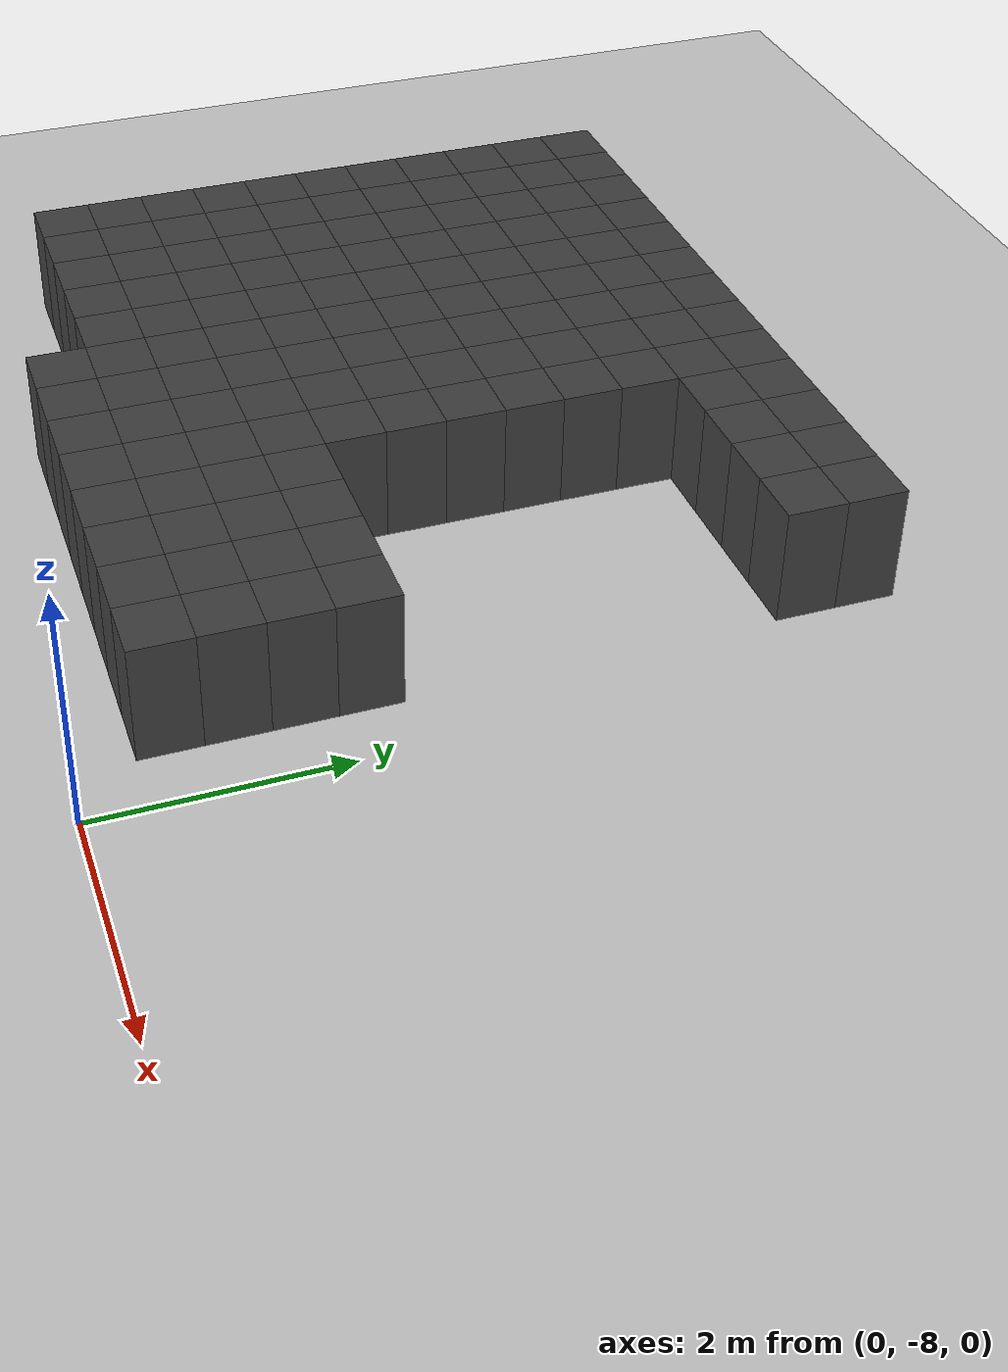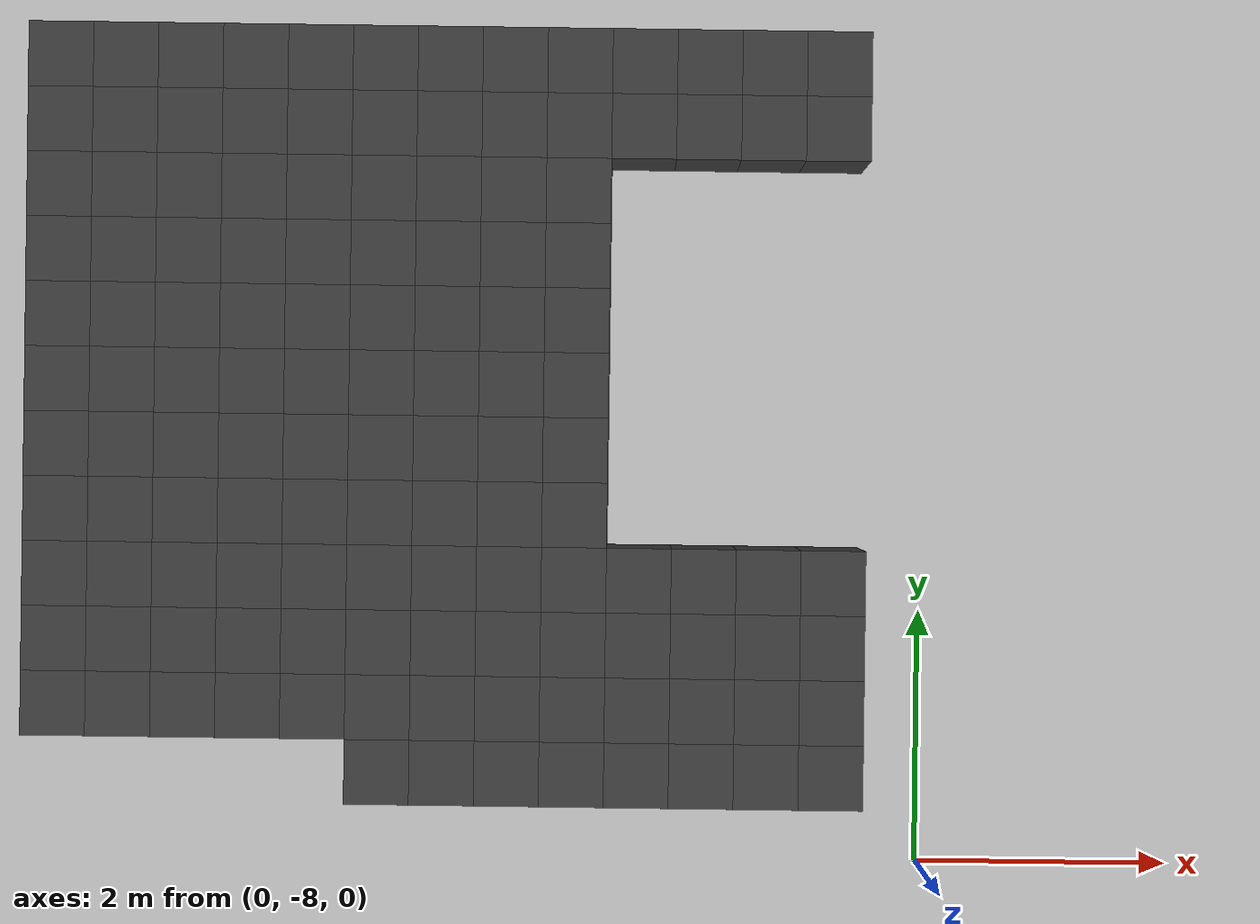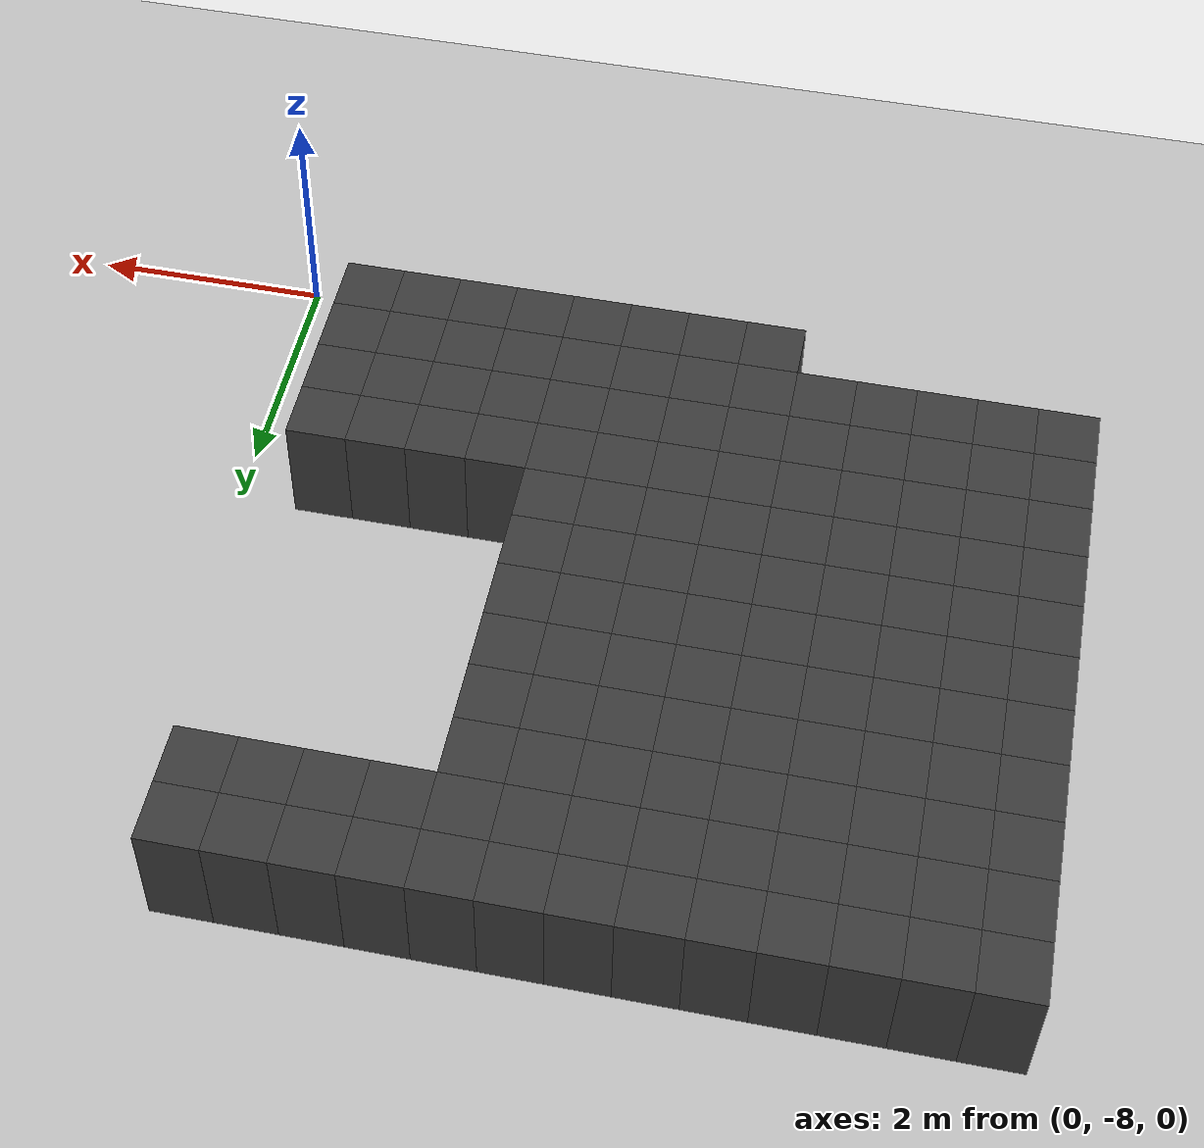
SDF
<sdf version="1.7">
 <world name="map_11672">
  <model name="ground_plane">
   <static>true</static>
   <link name="link">
    <collision name="collision">
     <geometry><plane><normal>0 0 1</normal><size>200 200</size></plane></geometry>
    </collision>
    <visual name="visual">
     <geometry><plane><normal>0 0 1</normal><size>200 200</size></plane></geometry>
     <material><ambient>0.8 0.8 0.8 1</ambient><diffuse>0.8 0.8 0.8 1</diffuse></material>
    </visual>
   </link>
  </model>
  <model name="maze_environment">
   <static>true</static>
   <link name="wall_1158">
    <pose>-6.750 -1.750 0.500 0 0 0</pose>
    <collision name="col"><geometry><box><size>0.5 0.5 1.0</size></box></geometry></collision>
    <visual name="vis">
     <geometry><box><size>0.5 0.5 1.0</size></box></geometry>
     <material><ambient>0.15 0.15 0.15 1</ambient><diffuse>0.25 0.25 0.25 1</diffuse></material>
    </visual>
   </link>
   <link name="wall_1159">
    <pose>-6.250 -1.750 0.500 0 0 0</pose>
    <collision name="col"><geometry><box><size>0.5 0.5 1.0</size></box></geometry></collision>
    <visual name="vis">
     <geometry><box><size>0.5 0.5 1.0</size></box></geometry>
     <material><ambient>0.15 0.15 0.15 1</ambient><diffuse>0.25 0.25 0.25 1</diffuse></material>
    </visual>
   </link>
   <link name="wall_1160">
    <pose>-5.750 -1.750 0.500 0 0 0</pose>
    <collision name="col"><geometry><box><size>0.5 0.5 1.0</size></box></geometry></collision>
    <visual name="vis">
     <geometry><box><size>0.5 0.5 1.0</size></box></geometry>
     <material><ambient>0.15 0.15 0.15 1</ambient><diffuse>0.25 0.25 0.25 1</diffuse></material>
    </visual>
   </link>
   <link name="wall_1161">
    <pose>-5.250 -1.750 0.500 0 0 0</pose>
    <collision name="col"><geometry><box><size>0.5 0.5 1.0</size></box></geometry></collision>
    <visual name="vis">
     <geometry><box><size>0.5 0.5 1.0</size></box></geometry>
     <material><ambient>0.15 0.15 0.15 1</ambient><diffuse>0.25 0.25 0.25 1</diffuse></material>
    </visual>
   </link>
   <link name="wall_1162">
    <pose>-4.750 -1.750 0.500 0 0 0</pose>
    <collision name="col"><geometry><box><size>0.5 0.5 1.0</size></box></geometry></collision>
    <visual name="vis">
     <geometry><box><size>0.5 0.5 1.0</size></box></geometry>
     <material><ambient>0.15 0.15 0.15 1</ambient><diffuse>0.25 0.25 0.25 1</diffuse></material>
    </visual>
   </link>
   <link name="wall_1163">
    <pose>-4.250 -1.750 0.500 0 0 0</pose>
    <collision name="col"><geometry><box><size>0.5 0.5 1.0</size></box></geometry></collision>
    <visual name="vis">
     <geometry><box><size>0.5 0.5 1.0</size></box></geometry>
     <material><ambient>0.15 0.15 0.15 1</ambient><diffuse>0.25 0.25 0.25 1</diffuse></material>
    </visual>
   </link>
   <link name="wall_1164">
    <pose>-3.750 -1.750 0.500 0 0 0</pose>
    <collision name="col"><geometry><box><size>0.5 0.5 1.0</size></box></geometry></collision>
    <visual name="vis">
     <geometry><box><size>0.5 0.5 1.0</size></box></geometry>
     <material><ambient>0.15 0.15 0.15 1</ambient><diffuse>0.25 0.25 0.25 1</diffuse></material>
    </visual>
   </link>
   <link name="wall_1165">
    <pose>-3.250 -1.750 0.500 0 0 0</pose>
    <collision name="col"><geometry><box><size>0.5 0.5 1.0</size></box></geometry></collision>
    <visual name="vis">
     <geometry><box><size>0.5 0.5 1.0</size></box></geometry>
     <material><ambient>0.15 0.15 0.15 1</ambient><diffuse>0.25 0.25 0.25 1</diffuse></material>
    </visual>
   </link>
   <link name="wall_1166">
    <pose>-2.750 -1.750 0.500 0 0 0</pose>
    <collision name="col"><geometry><box><size>0.5 0.5 1.0</size></box></geometry></collision>
    <visual name="vis">
     <geometry><box><size>0.5 0.5 1.0</size></box></geometry>
     <material><ambient>0.15 0.15 0.15 1</ambient><diffuse>0.25 0.25 0.25 1</diffuse></material>
    </visual>
   </link>
   <link name="wall_1167">
    <pose>-2.250 -1.750 0.500 0 0 0</pose>
    <collision name="col"><geometry><box><size>0.5 0.5 1.0</size></box></geometry></collision>
    <visual name="vis">
     <geometry><box><size>0.5 0.5 1.0</size></box></geometry>
     <material><ambient>0.15 0.15 0.15 1</ambient><diffuse>0.25 0.25 0.25 1</diffuse></material>
    </visual>
   </link>
   <link name="wall_1168">
    <pose>-1.750 -1.750 0.500 0 0 0</pose>
    <collision name="col"><geometry><box><size>0.5 0.5 1.0</size></box></geometry></collision>
    <visual name="vis">
     <geometry><box><size>0.5 0.5 1.0</size></box></geometry>
     <material><ambient>0.15 0.15 0.15 1</ambient><diffuse>0.25 0.25 0.25 1</diffuse></material>
    </visual>
   </link>
   <link name="wall_1169">
    <pose>-1.250 -1.750 0.500 0 0 0</pose>
    <collision name="col"><geometry><box><size>0.5 0.5 1.0</size></box></geometry></collision>
    <visual name="vis">
     <geometry><box><size>0.5 0.5 1.0</size></box></geometry>
     <material><ambient>0.15 0.15 0.15 1</ambient><diffuse>0.25 0.25 0.25 1</diffuse></material>
    </visual>
   </link>
   <link name="wall_1170">
    <pose>-0.750 -1.750 0.500 0 0 0</pose>
    <collision name="col"><geometry><box><size>0.5 0.5 1.0</size></box></geometry></collision>
    <visual name="vis">
     <geometry><box><size>0.5 0.5 1.0</size></box></geometry>
     <material><ambient>0.15 0.15 0.15 1</ambient><diffuse>0.25 0.25 0.25 1</diffuse></material>
    </visual>
   </link>
   <link name="wall_1206">
    <pose>-6.750 -2.250 0.500 0 0 0</pose>
    <collision name="col"><geometry><box><size>0.5 0.5 1.0</size></box></geometry></collision>
    <visual name="vis">
     <geometry><box><size>0.5 0.5 1.0</size></box></geometry>
     <material><ambient>0.15 0.15 0.15 1</ambient><diffuse>0.25 0.25 0.25 1</diffuse></material>
    </visual>
   </link>
   <link name="wall_1207">
    <pose>-6.250 -2.250 0.500 0 0 0</pose>
    <collision name="col"><geometry><box><size>0.5 0.5 1.0</size></box></geometry></collision>
    <visual name="vis">
     <geometry><box><size>0.5 0.5 1.0</size></box></geometry>
     <material><ambient>0.15 0.15 0.15 1</ambient><diffuse>0.25 0.25 0.25 1</diffuse></material>
    </visual>
   </link>
   <link name="wall_1208">
    <pose>-5.750 -2.250 0.500 0 0 0</pose>
    <collision name="col"><geometry><box><size>0.5 0.5 1.0</size></box></geometry></collision>
    <visual name="vis">
     <geometry><box><size>0.5 0.5 1.0</size></box></geometry>
     <material><ambient>0.15 0.15 0.15 1</ambient><diffuse>0.25 0.25 0.25 1</diffuse></material>
    </visual>
   </link>
   <link name="wall_1209">
    <pose>-5.250 -2.250 0.500 0 0 0</pose>
    <collision name="col"><geometry><box><size>0.5 0.5 1.0</size></box></geometry></collision>
    <visual name="vis">
     <geometry><box><size>0.5 0.5 1.0</size></box></geometry>
     <material><ambient>0.15 0.15 0.15 1</ambient><diffuse>0.25 0.25 0.25 1</diffuse></material>
    </visual>
   </link>
   <link name="wall_1210">
    <pose>-4.750 -2.250 0.500 0 0 0</pose>
    <collision name="col"><geometry><box><size>0.5 0.5 1.0</size></box></geometry></collision>
    <visual name="vis">
     <geometry><box><size>0.5 0.5 1.0</size></box></geometry>
     <material><ambient>0.15 0.15 0.15 1</ambient><diffuse>0.25 0.25 0.25 1</diffuse></material>
    </visual>
   </link>
   <link name="wall_1211">
    <pose>-4.250 -2.250 0.500 0 0 0</pose>
    <collision name="col"><geometry><box><size>0.5 0.5 1.0</size></box></geometry></collision>
    <visual name="vis">
     <geometry><box><size>0.5 0.5 1.0</size></box></geometry>
     <material><ambient>0.15 0.15 0.15 1</ambient><diffuse>0.25 0.25 0.25 1</diffuse></material>
    </visual>
   </link>
   <link name="wall_1212">
    <pose>-3.750 -2.250 0.500 0 0 0</pose>
    <collision name="col"><geometry><box><size>0.5 0.5 1.0</size></box></geometry></collision>
    <visual name="vis">
     <geometry><box><size>0.5 0.5 1.0</size></box></geometry>
     <material><ambient>0.15 0.15 0.15 1</ambient><diffuse>0.25 0.25 0.25 1</diffuse></material>
    </visual>
   </link>
   <link name="wall_1213">
    <pose>-3.250 -2.250 0.500 0 0 0</pose>
    <collision name="col"><geometry><box><size>0.5 0.5 1.0</size></box></geometry></collision>
    <visual name="vis">
     <geometry><box><size>0.5 0.5 1.0</size></box></geometry>
     <material><ambient>0.15 0.15 0.15 1</ambient><diffuse>0.25 0.25 0.25 1</diffuse></material>
    </visual>
   </link>
   <link name="wall_1214">
    <pose>-2.750 -2.250 0.500 0 0 0</pose>
    <collision name="col"><geometry><box><size>0.5 0.5 1.0</size></box></geometry></collision>
    <visual name="vis">
     <geometry><box><size>0.5 0.5 1.0</size></box></geometry>
     <material><ambient>0.15 0.15 0.15 1</ambient><diffuse>0.25 0.25 0.25 1</diffuse></material>
    </visual>
   </link>
   <link name="wall_1215">
    <pose>-2.250 -2.250 0.500 0 0 0</pose>
    <collision name="col"><geometry><box><size>0.5 0.5 1.0</size></box></geometry></collision>
    <visual name="vis">
     <geometry><box><size>0.5 0.5 1.0</size></box></geometry>
     <material><ambient>0.15 0.15 0.15 1</ambient><diffuse>0.25 0.25 0.25 1</diffuse></material>
    </visual>
   </link>
   <link name="wall_1216">
    <pose>-1.750 -2.250 0.500 0 0 0</pose>
    <collision name="col"><geometry><box><size>0.5 0.5 1.0</size></box></geometry></collision>
    <visual name="vis">
     <geometry><box><size>0.5 0.5 1.0</size></box></geometry>
     <material><ambient>0.15 0.15 0.15 1</ambient><diffuse>0.25 0.25 0.25 1</diffuse></material>
    </visual>
   </link>
   <link name="wall_1217">
    <pose>-1.250 -2.250 0.500 0 0 0</pose>
    <collision name="col"><geometry><box><size>0.5 0.5 1.0</size></box></geometry></collision>
    <visual name="vis">
     <geometry><box><size>0.5 0.5 1.0</size></box></geometry>
     <material><ambient>0.15 0.15 0.15 1</ambient><diffuse>0.25 0.25 0.25 1</diffuse></material>
    </visual>
   </link>
   <link name="wall_1218">
    <pose>-0.750 -2.250 0.500 0 0 0</pose>
    <collision name="col"><geometry><box><size>0.5 0.5 1.0</size></box></geometry></collision>
    <visual name="vis">
     <geometry><box><size>0.5 0.5 1.0</size></box></geometry>
     <material><ambient>0.15 0.15 0.15 1</ambient><diffuse>0.25 0.25 0.25 1</diffuse></material>
    </visual>
   </link>
   <link name="wall_1251">
    <pose>-6.750 -2.750 0.500 0 0 0</pose>
    <collision name="col"><geometry><box><size>0.5 0.5 1.0</size></box></geometry></collision>
    <visual name="vis">
     <geometry><box><size>0.5 0.5 1.0</size></box></geometry>
     <material><ambient>0.15 0.15 0.15 1</ambient><diffuse>0.25 0.25 0.25 1</diffuse></material>
    </visual>
   </link>
   <link name="wall_1252">
    <pose>-6.250 -2.750 0.500 0 0 0</pose>
    <collision name="col"><geometry><box><size>0.5 0.5 1.0</size></box></geometry></collision>
    <visual name="vis">
     <geometry><box><size>0.5 0.5 1.0</size></box></geometry>
     <material><ambient>0.15 0.15 0.15 1</ambient><diffuse>0.25 0.25 0.25 1</diffuse></material>
    </visual>
   </link>
   <link name="wall_1253">
    <pose>-5.750 -2.750 0.500 0 0 0</pose>
    <collision name="col"><geometry><box><size>0.5 0.5 1.0</size></box></geometry></collision>
    <visual name="vis">
     <geometry><box><size>0.5 0.5 1.0</size></box></geometry>
     <material><ambient>0.15 0.15 0.15 1</ambient><diffuse>0.25 0.25 0.25 1</diffuse></material>
    </visual>
   </link>
   <link name="wall_1254">
    <pose>-5.250 -2.750 0.500 0 0 0</pose>
    <collision name="col"><geometry><box><size>0.5 0.5 1.0</size></box></geometry></collision>
    <visual name="vis">
     <geometry><box><size>0.5 0.5 1.0</size></box></geometry>
     <material><ambient>0.15 0.15 0.15 1</ambient><diffuse>0.25 0.25 0.25 1</diffuse></material>
    </visual>
   </link>
   <link name="wall_1255">
    <pose>-4.750 -2.750 0.500 0 0 0</pose>
    <collision name="col"><geometry><box><size>0.5 0.5 1.0</size></box></geometry></collision>
    <visual name="vis">
     <geometry><box><size>0.5 0.5 1.0</size></box></geometry>
     <material><ambient>0.15 0.15 0.15 1</ambient><diffuse>0.25 0.25 0.25 1</diffuse></material>
    </visual>
   </link>
   <link name="wall_1256">
    <pose>-4.250 -2.750 0.500 0 0 0</pose>
    <collision name="col"><geometry><box><size>0.5 0.5 1.0</size></box></geometry></collision>
    <visual name="vis">
     <geometry><box><size>0.5 0.5 1.0</size></box></geometry>
     <material><ambient>0.15 0.15 0.15 1</ambient><diffuse>0.25 0.25 0.25 1</diffuse></material>
    </visual>
   </link>
   <link name="wall_1257">
    <pose>-3.750 -2.750 0.500 0 0 0</pose>
    <collision name="col"><geometry><box><size>0.5 0.5 1.0</size></box></geometry></collision>
    <visual name="vis">
     <geometry><box><size>0.5 0.5 1.0</size></box></geometry>
     <material><ambient>0.15 0.15 0.15 1</ambient><diffuse>0.25 0.25 0.25 1</diffuse></material>
    </visual>
   </link>
   <link name="wall_1258">
    <pose>-3.250 -2.750 0.500 0 0 0</pose>
    <collision name="col"><geometry><box><size>0.5 0.5 1.0</size></box></geometry></collision>
    <visual name="vis">
     <geometry><box><size>0.5 0.5 1.0</size></box></geometry>
     <material><ambient>0.15 0.15 0.15 1</ambient><diffuse>0.25 0.25 0.25 1</diffuse></material>
    </visual>
   </link>
   <link name="wall_1259">
    <pose>-2.750 -2.750 0.500 0 0 0</pose>
    <collision name="col"><geometry><box><size>0.5 0.5 1.0</size></box></geometry></collision>
    <visual name="vis">
     <geometry><box><size>0.5 0.5 1.0</size></box></geometry>
     <material><ambient>0.15 0.15 0.15 1</ambient><diffuse>0.25 0.25 0.25 1</diffuse></material>
    </visual>
   </link>
   <link name="wall_1290">
    <pose>-6.750 -3.250 0.500 0 0 0</pose>
    <collision name="col"><geometry><box><size>0.5 0.5 1.0</size></box></geometry></collision>
    <visual name="vis">
     <geometry><box><size>0.5 0.5 1.0</size></box></geometry>
     <material><ambient>0.15 0.15 0.15 1</ambient><diffuse>0.25 0.25 0.25 1</diffuse></material>
    </visual>
   </link>
   <link name="wall_1291">
    <pose>-6.250 -3.250 0.500 0 0 0</pose>
    <collision name="col"><geometry><box><size>0.5 0.5 1.0</size></box></geometry></collision>
    <visual name="vis">
     <geometry><box><size>0.5 0.5 1.0</size></box></geometry>
     <material><ambient>0.15 0.15 0.15 1</ambient><diffuse>0.25 0.25 0.25 1</diffuse></material>
    </visual>
   </link>
   <link name="wall_1292">
    <pose>-5.750 -3.250 0.500 0 0 0</pose>
    <collision name="col"><geometry><box><size>0.5 0.5 1.0</size></box></geometry></collision>
    <visual name="vis">
     <geometry><box><size>0.5 0.5 1.0</size></box></geometry>
     <material><ambient>0.15 0.15 0.15 1</ambient><diffuse>0.25 0.25 0.25 1</diffuse></material>
    </visual>
   </link>
   <link name="wall_1293">
    <pose>-5.250 -3.250 0.500 0 0 0</pose>
    <collision name="col"><geometry><box><size>0.5 0.5 1.0</size></box></geometry></collision>
    <visual name="vis">
     <geometry><box><size>0.5 0.5 1.0</size></box></geometry>
     <material><ambient>0.15 0.15 0.15 1</ambient><diffuse>0.25 0.25 0.25 1</diffuse></material>
    </visual>
   </link>
   <link name="wall_1294">
    <pose>-4.750 -3.250 0.500 0 0 0</pose>
    <collision name="col"><geometry><box><size>0.5 0.5 1.0</size></box></geometry></collision>
    <visual name="vis">
     <geometry><box><size>0.5 0.5 1.0</size></box></geometry>
     <material><ambient>0.15 0.15 0.15 1</ambient><diffuse>0.25 0.25 0.25 1</diffuse></material>
    </visual>
   </link>
   <link name="wall_1295">
    <pose>-4.250 -3.250 0.500 0 0 0</pose>
    <collision name="col"><geometry><box><size>0.5 0.5 1.0</size></box></geometry></collision>
    <visual name="vis">
     <geometry><box><size>0.5 0.5 1.0</size></box></geometry>
     <material><ambient>0.15 0.15 0.15 1</ambient><diffuse>0.25 0.25 0.25 1</diffuse></material>
    </visual>
   </link>
   <link name="wall_1296">
    <pose>-3.750 -3.250 0.500 0 0 0</pose>
    <collision name="col"><geometry><box><size>0.5 0.5 1.0</size></box></geometry></collision>
    <visual name="vis">
     <geometry><box><size>0.5 0.5 1.0</size></box></geometry>
     <material><ambient>0.15 0.15 0.15 1</ambient><diffuse>0.25 0.25 0.25 1</diffuse></material>
    </visual>
   </link>
   <link name="wall_1297">
    <pose>-3.250 -3.250 0.500 0 0 0</pose>
    <collision name="col"><geometry><box><size>0.5 0.5 1.0</size></box></geometry></collision>
    <visual name="vis">
     <geometry><box><size>0.5 0.5 1.0</size></box></geometry>
     <material><ambient>0.15 0.15 0.15 1</ambient><diffuse>0.25 0.25 0.25 1</diffuse></material>
    </visual>
   </link>
   <link name="wall_1298">
    <pose>-2.750 -3.250 0.500 0 0 0</pose>
    <collision name="col"><geometry><box><size>0.5 0.5 1.0</size></box></geometry></collision>
    <visual name="vis">
     <geometry><box><size>0.5 0.5 1.0</size></box></geometry>
     <material><ambient>0.15 0.15 0.15 1</ambient><diffuse>0.25 0.25 0.25 1</diffuse></material>
    </visual>
   </link>
   <link name="wall_1329">
    <pose>-6.750 -3.750 0.500 0 0 0</pose>
    <collision name="col"><geometry><box><size>0.5 0.5 1.0</size></box></geometry></collision>
    <visual name="vis">
     <geometry><box><size>0.5 0.5 1.0</size></box></geometry>
     <material><ambient>0.15 0.15 0.15 1</ambient><diffuse>0.25 0.25 0.25 1</diffuse></material>
    </visual>
   </link>
   <link name="wall_1330">
    <pose>-6.250 -3.750 0.500 0 0 0</pose>
    <collision name="col"><geometry><box><size>0.5 0.5 1.0</size></box></geometry></collision>
    <visual name="vis">
     <geometry><box><size>0.5 0.5 1.0</size></box></geometry>
     <material><ambient>0.15 0.15 0.15 1</ambient><diffuse>0.25 0.25 0.25 1</diffuse></material>
    </visual>
   </link>
   <link name="wall_1331">
    <pose>-5.750 -3.750 0.500 0 0 0</pose>
    <collision name="col"><geometry><box><size>0.5 0.5 1.0</size></box></geometry></collision>
    <visual name="vis">
     <geometry><box><size>0.5 0.5 1.0</size></box></geometry>
     <material><ambient>0.15 0.15 0.15 1</ambient><diffuse>0.25 0.25 0.25 1</diffuse></material>
    </visual>
   </link>
   <link name="wall_1332">
    <pose>-5.250 -3.750 0.500 0 0 0</pose>
    <collision name="col"><geometry><box><size>0.5 0.5 1.0</size></box></geometry></collision>
    <visual name="vis">
     <geometry><box><size>0.5 0.5 1.0</size></box></geometry>
     <material><ambient>0.15 0.15 0.15 1</ambient><diffuse>0.25 0.25 0.25 1</diffuse></material>
    </visual>
   </link>
   <link name="wall_1333">
    <pose>-4.750 -3.750 0.500 0 0 0</pose>
    <collision name="col"><geometry><box><size>0.5 0.5 1.0</size></box></geometry></collision>
    <visual name="vis">
     <geometry><box><size>0.5 0.5 1.0</size></box></geometry>
     <material><ambient>0.15 0.15 0.15 1</ambient><diffuse>0.25 0.25 0.25 1</diffuse></material>
    </visual>
   </link>
   <link name="wall_1334">
    <pose>-4.250 -3.750 0.500 0 0 0</pose>
    <collision name="col"><geometry><box><size>0.5 0.5 1.0</size></box></geometry></collision>
    <visual name="vis">
     <geometry><box><size>0.5 0.5 1.0</size></box></geometry>
     <material><ambient>0.15 0.15 0.15 1</ambient><diffuse>0.25 0.25 0.25 1</diffuse></material>
    </visual>
   </link>
   <link name="wall_1335">
    <pose>-3.750 -3.750 0.500 0 0 0</pose>
    <collision name="col"><geometry><box><size>0.5 0.5 1.0</size></box></geometry></collision>
    <visual name="vis">
     <geometry><box><size>0.5 0.5 1.0</size></box></geometry>
     <material><ambient>0.15 0.15 0.15 1</ambient><diffuse>0.25 0.25 0.25 1</diffuse></material>
    </visual>
   </link>
   <link name="wall_1336">
    <pose>-3.250 -3.750 0.500 0 0 0</pose>
    <collision name="col"><geometry><box><size>0.5 0.5 1.0</size></box></geometry></collision>
    <visual name="vis">
     <geometry><box><size>0.5 0.5 1.0</size></box></geometry>
     <material><ambient>0.15 0.15 0.15 1</ambient><diffuse>0.25 0.25 0.25 1</diffuse></material>
    </visual>
   </link>
   <link name="wall_1337">
    <pose>-2.750 -3.750 0.500 0 0 0</pose>
    <collision name="col"><geometry><box><size>0.5 0.5 1.0</size></box></geometry></collision>
    <visual name="vis">
     <geometry><box><size>0.5 0.5 1.0</size></box></geometry>
     <material><ambient>0.15 0.15 0.15 1</ambient><diffuse>0.25 0.25 0.25 1</diffuse></material>
    </visual>
   </link>
   <link name="wall_1368">
    <pose>-6.750 -4.250 0.500 0 0 0</pose>
    <collision name="col"><geometry><box><size>0.5 0.5 1.0</size></box></geometry></collision>
    <visual name="vis">
     <geometry><box><size>0.5 0.5 1.0</size></box></geometry>
     <material><ambient>0.15 0.15 0.15 1</ambient><diffuse>0.25 0.25 0.25 1</diffuse></material>
    </visual>
   </link>
   <link name="wall_1369">
    <pose>-6.250 -4.250 0.500 0 0 0</pose>
    <collision name="col"><geometry><box><size>0.5 0.5 1.0</size></box></geometry></collision>
    <visual name="vis">
     <geometry><box><size>0.5 0.5 1.0</size></box></geometry>
     <material><ambient>0.15 0.15 0.15 1</ambient><diffuse>0.25 0.25 0.25 1</diffuse></material>
    </visual>
   </link>
   <link name="wall_1370">
    <pose>-5.750 -4.250 0.500 0 0 0</pose>
    <collision name="col"><geometry><box><size>0.5 0.5 1.0</size></box></geometry></collision>
    <visual name="vis">
     <geometry><box><size>0.5 0.5 1.0</size></box></geometry>
     <material><ambient>0.15 0.15 0.15 1</ambient><diffuse>0.25 0.25 0.25 1</diffuse></material>
    </visual>
   </link>
   <link name="wall_1371">
    <pose>-5.250 -4.250 0.500 0 0 0</pose>
    <collision name="col"><geometry><box><size>0.5 0.5 1.0</size></box></geometry></collision>
    <visual name="vis">
     <geometry><box><size>0.5 0.5 1.0</size></box></geometry>
     <material><ambient>0.15 0.15 0.15 1</ambient><diffuse>0.25 0.25 0.25 1</diffuse></material>
    </visual>
   </link>
   <link name="wall_1372">
    <pose>-4.750 -4.250 0.500 0 0 0</pose>
    <collision name="col"><geometry><box><size>0.5 0.5 1.0</size></box></geometry></collision>
    <visual name="vis">
     <geometry><box><size>0.5 0.5 1.0</size></box></geometry>
     <material><ambient>0.15 0.15 0.15 1</ambient><diffuse>0.25 0.25 0.25 1</diffuse></material>
    </visual>
   </link>
   <link name="wall_1373">
    <pose>-4.250 -4.250 0.500 0 0 0</pose>
    <collision name="col"><geometry><box><size>0.5 0.5 1.0</size></box></geometry></collision>
    <visual name="vis">
     <geometry><box><size>0.5 0.5 1.0</size></box></geometry>
     <material><ambient>0.15 0.15 0.15 1</ambient><diffuse>0.25 0.25 0.25 1</diffuse></material>
    </visual>
   </link>
   <link name="wall_1374">
    <pose>-3.750 -4.250 0.500 0 0 0</pose>
    <collision name="col"><geometry><box><size>0.5 0.5 1.0</size></box></geometry></collision>
    <visual name="vis">
     <geometry><box><size>0.5 0.5 1.0</size></box></geometry>
     <material><ambient>0.15 0.15 0.15 1</ambient><diffuse>0.25 0.25 0.25 1</diffuse></material>
    </visual>
   </link>
   <link name="wall_1375">
    <pose>-3.250 -4.250 0.500 0 0 0</pose>
    <collision name="col"><geometry><box><size>0.5 0.5 1.0</size></box></geometry></collision>
    <visual name="vis">
     <geometry><box><size>0.5 0.5 1.0</size></box></geometry>
     <material><ambient>0.15 0.15 0.15 1</ambient><diffuse>0.25 0.25 0.25 1</diffuse></material>
    </visual>
   </link>
   <link name="wall_1376">
    <pose>-2.750 -4.250 0.500 0 0 0</pose>
    <collision name="col"><geometry><box><size>0.5 0.5 1.0</size></box></geometry></collision>
    <visual name="vis">
     <geometry><box><size>0.5 0.5 1.0</size></box></geometry>
     <material><ambient>0.15 0.15 0.15 1</ambient><diffuse>0.25 0.25 0.25 1</diffuse></material>
    </visual>
   </link>
   <link name="wall_1406">
    <pose>-6.750 -4.750 0.500 0 0 0</pose>
    <collision name="col"><geometry><box><size>0.5 0.5 1.0</size></box></geometry></collision>
    <visual name="vis">
     <geometry><box><size>0.5 0.5 1.0</size></box></geometry>
     <material><ambient>0.15 0.15 0.15 1</ambient><diffuse>0.25 0.25 0.25 1</diffuse></material>
    </visual>
   </link>
   <link name="wall_1407">
    <pose>-6.250 -4.750 0.500 0 0 0</pose>
    <collision name="col"><geometry><box><size>0.5 0.5 1.0</size></box></geometry></collision>
    <visual name="vis">
     <geometry><box><size>0.5 0.5 1.0</size></box></geometry>
     <material><ambient>0.15 0.15 0.15 1</ambient><diffuse>0.25 0.25 0.25 1</diffuse></material>
    </visual>
   </link>
   <link name="wall_1408">
    <pose>-5.750 -4.750 0.500 0 0 0</pose>
    <collision name="col"><geometry><box><size>0.5 0.5 1.0</size></box></geometry></collision>
    <visual name="vis">
     <geometry><box><size>0.5 0.5 1.0</size></box></geometry>
     <material><ambient>0.15 0.15 0.15 1</ambient><diffuse>0.25 0.25 0.25 1</diffuse></material>
    </visual>
   </link>
   <link name="wall_1409">
    <pose>-5.250 -4.750 0.500 0 0 0</pose>
    <collision name="col"><geometry><box><size>0.5 0.5 1.0</size></box></geometry></collision>
    <visual name="vis">
     <geometry><box><size>0.5 0.5 1.0</size></box></geometry>
     <material><ambient>0.15 0.15 0.15 1</ambient><diffuse>0.25 0.25 0.25 1</diffuse></material>
    </visual>
   </link>
   <link name="wall_1410">
    <pose>-4.750 -4.750 0.500 0 0 0</pose>
    <collision name="col"><geometry><box><size>0.5 0.5 1.0</size></box></geometry></collision>
    <visual name="vis">
     <geometry><box><size>0.5 0.5 1.0</size></box></geometry>
     <material><ambient>0.15 0.15 0.15 1</ambient><diffuse>0.25 0.25 0.25 1</diffuse></material>
    </visual>
   </link>
   <link name="wall_1411">
    <pose>-4.250 -4.750 0.500 0 0 0</pose>
    <collision name="col"><geometry><box><size>0.5 0.5 1.0</size></box></geometry></collision>
    <visual name="vis">
     <geometry><box><size>0.5 0.5 1.0</size></box></geometry>
     <material><ambient>0.15 0.15 0.15 1</ambient><diffuse>0.25 0.25 0.25 1</diffuse></material>
    </visual>
   </link>
   <link name="wall_1412">
    <pose>-3.750 -4.750 0.500 0 0 0</pose>
    <collision name="col"><geometry><box><size>0.5 0.5 1.0</size></box></geometry></collision>
    <visual name="vis">
     <geometry><box><size>0.5 0.5 1.0</size></box></geometry>
     <material><ambient>0.15 0.15 0.15 1</ambient><diffuse>0.25 0.25 0.25 1</diffuse></material>
    </visual>
   </link>
   <link name="wall_1413">
    <pose>-3.250 -4.750 0.500 0 0 0</pose>
    <collision name="col"><geometry><box><size>0.5 0.5 1.0</size></box></geometry></collision>
    <visual name="vis">
     <geometry><box><size>0.5 0.5 1.0</size></box></geometry>
     <material><ambient>0.15 0.15 0.15 1</ambient><diffuse>0.25 0.25 0.25 1</diffuse></material>
    </visual>
   </link>
   <link name="wall_1414">
    <pose>-2.750 -4.750 0.500 0 0 0</pose>
    <collision name="col"><geometry><box><size>0.5 0.5 1.0</size></box></geometry></collision>
    <visual name="vis">
     <geometry><box><size>0.5 0.5 1.0</size></box></geometry>
     <material><ambient>0.15 0.15 0.15 1</ambient><diffuse>0.25 0.25 0.25 1</diffuse></material>
    </visual>
   </link>
   <link name="wall_1449">
    <pose>-6.750 -5.250 0.500 0 0 0</pose>
    <collision name="col"><geometry><box><size>0.5 0.5 1.0</size></box></geometry></collision>
    <visual name="vis">
     <geometry><box><size>0.5 0.5 1.0</size></box></geometry>
     <material><ambient>0.15 0.15 0.15 1</ambient><diffuse>0.25 0.25 0.25 1</diffuse></material>
    </visual>
   </link>
   <link name="wall_1450">
    <pose>-6.250 -5.250 0.500 0 0 0</pose>
    <collision name="col"><geometry><box><size>0.5 0.5 1.0</size></box></geometry></collision>
    <visual name="vis">
     <geometry><box><size>0.5 0.5 1.0</size></box></geometry>
     <material><ambient>0.15 0.15 0.15 1</ambient><diffuse>0.25 0.25 0.25 1</diffuse></material>
    </visual>
   </link>
   <link name="wall_1451">
    <pose>-5.750 -5.250 0.500 0 0 0</pose>
    <collision name="col"><geometry><box><size>0.5 0.5 1.0</size></box></geometry></collision>
    <visual name="vis">
     <geometry><box><size>0.5 0.5 1.0</size></box></geometry>
     <material><ambient>0.15 0.15 0.15 1</ambient><diffuse>0.25 0.25 0.25 1</diffuse></material>
    </visual>
   </link>
   <link name="wall_1452">
    <pose>-5.250 -5.250 0.500 0 0 0</pose>
    <collision name="col"><geometry><box><size>0.5 0.5 1.0</size></box></geometry></collision>
    <visual name="vis">
     <geometry><box><size>0.5 0.5 1.0</size></box></geometry>
     <material><ambient>0.15 0.15 0.15 1</ambient><diffuse>0.25 0.25 0.25 1</diffuse></material>
    </visual>
   </link>
   <link name="wall_1453">
    <pose>-4.750 -5.250 0.500 0 0 0</pose>
    <collision name="col"><geometry><box><size>0.5 0.5 1.0</size></box></geometry></collision>
    <visual name="vis">
     <geometry><box><size>0.5 0.5 1.0</size></box></geometry>
     <material><ambient>0.15 0.15 0.15 1</ambient><diffuse>0.25 0.25 0.25 1</diffuse></material>
    </visual>
   </link>
   <link name="wall_1454">
    <pose>-4.250 -5.250 0.500 0 0 0</pose>
    <collision name="col"><geometry><box><size>0.5 0.5 1.0</size></box></geometry></collision>
    <visual name="vis">
     <geometry><box><size>0.5 0.5 1.0</size></box></geometry>
     <material><ambient>0.15 0.15 0.15 1</ambient><diffuse>0.25 0.25 0.25 1</diffuse></material>
    </visual>
   </link>
   <link name="wall_1455">
    <pose>-3.750 -5.250 0.500 0 0 0</pose>
    <collision name="col"><geometry><box><size>0.5 0.5 1.0</size></box></geometry></collision>
    <visual name="vis">
     <geometry><box><size>0.5 0.5 1.0</size></box></geometry>
     <material><ambient>0.15 0.15 0.15 1</ambient><diffuse>0.25 0.25 0.25 1</diffuse></material>
    </visual>
   </link>
   <link name="wall_1456">
    <pose>-3.250 -5.250 0.500 0 0 0</pose>
    <collision name="col"><geometry><box><size>0.5 0.5 1.0</size></box></geometry></collision>
    <visual name="vis">
     <geometry><box><size>0.5 0.5 1.0</size></box></geometry>
     <material><ambient>0.15 0.15 0.15 1</ambient><diffuse>0.25 0.25 0.25 1</diffuse></material>
    </visual>
   </link>
   <link name="wall_1457">
    <pose>-2.750 -5.250 0.500 0 0 0</pose>
    <collision name="col"><geometry><box><size>0.5 0.5 1.0</size></box></geometry></collision>
    <visual name="vis">
     <geometry><box><size>0.5 0.5 1.0</size></box></geometry>
     <material><ambient>0.15 0.15 0.15 1</ambient><diffuse>0.25 0.25 0.25 1</diffuse></material>
    </visual>
   </link>
   <link name="wall_1492">
    <pose>-6.750 -5.750 0.500 0 0 0</pose>
    <collision name="col"><geometry><box><size>0.5 0.5 1.0</size></box></geometry></collision>
    <visual name="vis">
     <geometry><box><size>0.5 0.5 1.0</size></box></geometry>
     <material><ambient>0.15 0.15 0.15 1</ambient><diffuse>0.25 0.25 0.25 1</diffuse></material>
    </visual>
   </link>
   <link name="wall_1493">
    <pose>-6.250 -5.750 0.500 0 0 0</pose>
    <collision name="col"><geometry><box><size>0.5 0.5 1.0</size></box></geometry></collision>
    <visual name="vis">
     <geometry><box><size>0.5 0.5 1.0</size></box></geometry>
     <material><ambient>0.15 0.15 0.15 1</ambient><diffuse>0.25 0.25 0.25 1</diffuse></material>
    </visual>
   </link>
   <link name="wall_1494">
    <pose>-5.750 -5.750 0.500 0 0 0</pose>
    <collision name="col"><geometry><box><size>0.5 0.5 1.0</size></box></geometry></collision>
    <visual name="vis">
     <geometry><box><size>0.5 0.5 1.0</size></box></geometry>
     <material><ambient>0.15 0.15 0.15 1</ambient><diffuse>0.25 0.25 0.25 1</diffuse></material>
    </visual>
   </link>
   <link name="wall_1495">
    <pose>-5.250 -5.750 0.500 0 0 0</pose>
    <collision name="col"><geometry><box><size>0.5 0.5 1.0</size></box></geometry></collision>
    <visual name="vis">
     <geometry><box><size>0.5 0.5 1.0</size></box></geometry>
     <material><ambient>0.15 0.15 0.15 1</ambient><diffuse>0.25 0.25 0.25 1</diffuse></material>
    </visual>
   </link>
   <link name="wall_1496">
    <pose>-4.750 -5.750 0.500 0 0 0</pose>
    <collision name="col"><geometry><box><size>0.5 0.5 1.0</size></box></geometry></collision>
    <visual name="vis">
     <geometry><box><size>0.5 0.5 1.0</size></box></geometry>
     <material><ambient>0.15 0.15 0.15 1</ambient><diffuse>0.25 0.25 0.25 1</diffuse></material>
    </visual>
   </link>
   <link name="wall_1497">
    <pose>-4.250 -5.750 0.500 0 0 0</pose>
    <collision name="col"><geometry><box><size>0.5 0.5 1.0</size></box></geometry></collision>
    <visual name="vis">
     <geometry><box><size>0.5 0.5 1.0</size></box></geometry>
     <material><ambient>0.15 0.15 0.15 1</ambient><diffuse>0.25 0.25 0.25 1</diffuse></material>
    </visual>
   </link>
   <link name="wall_1498">
    <pose>-3.750 -5.750 0.500 0 0 0</pose>
    <collision name="col"><geometry><box><size>0.5 0.5 1.0</size></box></geometry></collision>
    <visual name="vis">
     <geometry><box><size>0.5 0.5 1.0</size></box></geometry>
     <material><ambient>0.15 0.15 0.15 1</ambient><diffuse>0.25 0.25 0.25 1</diffuse></material>
    </visual>
   </link>
   <link name="wall_1499">
    <pose>-3.250 -5.750 0.500 0 0 0</pose>
    <collision name="col"><geometry><box><size>0.5 0.5 1.0</size></box></geometry></collision>
    <visual name="vis">
     <geometry><box><size>0.5 0.5 1.0</size></box></geometry>
     <material><ambient>0.15 0.15 0.15 1</ambient><diffuse>0.25 0.25 0.25 1</diffuse></material>
    </visual>
   </link>
   <link name="wall_1500">
    <pose>-2.750 -5.750 0.500 0 0 0</pose>
    <collision name="col"><geometry><box><size>0.5 0.5 1.0</size></box></geometry></collision>
    <visual name="vis">
     <geometry><box><size>0.5 0.5 1.0</size></box></geometry>
     <material><ambient>0.15 0.15 0.15 1</ambient><diffuse>0.25 0.25 0.25 1</diffuse></material>
    </visual>
   </link>
   <link name="wall_1501">
    <pose>-2.250 -5.750 0.500 0 0 0</pose>
    <collision name="col"><geometry><box><size>0.5 0.5 1.0</size></box></geometry></collision>
    <visual name="vis">
     <geometry><box><size>0.5 0.5 1.0</size></box></geometry>
     <material><ambient>0.15 0.15 0.15 1</ambient><diffuse>0.25 0.25 0.25 1</diffuse></material>
    </visual>
   </link>
   <link name="wall_1502">
    <pose>-1.750 -5.750 0.500 0 0 0</pose>
    <collision name="col"><geometry><box><size>0.5 0.5 1.0</size></box></geometry></collision>
    <visual name="vis">
     <geometry><box><size>0.5 0.5 1.0</size></box></geometry>
     <material><ambient>0.15 0.15 0.15 1</ambient><diffuse>0.25 0.25 0.25 1</diffuse></material>
    </visual>
   </link>
   <link name="wall_1503">
    <pose>-1.250 -5.750 0.500 0 0 0</pose>
    <collision name="col"><geometry><box><size>0.5 0.5 1.0</size></box></geometry></collision>
    <visual name="vis">
     <geometry><box><size>0.5 0.5 1.0</size></box></geometry>
     <material><ambient>0.15 0.15 0.15 1</ambient><diffuse>0.25 0.25 0.25 1</diffuse></material>
    </visual>
   </link>
   <link name="wall_1504">
    <pose>-0.750 -5.750 0.500 0 0 0</pose>
    <collision name="col"><geometry><box><size>0.5 0.5 1.0</size></box></geometry></collision>
    <visual name="vis">
     <geometry><box><size>0.5 0.5 1.0</size></box></geometry>
     <material><ambient>0.15 0.15 0.15 1</ambient><diffuse>0.25 0.25 0.25 1</diffuse></material>
    </visual>
   </link>
   <link name="wall_1541">
    <pose>-6.750 -6.250 0.500 0 0 0</pose>
    <collision name="col"><geometry><box><size>0.5 0.5 1.0</size></box></geometry></collision>
    <visual name="vis">
     <geometry><box><size>0.5 0.5 1.0</size></box></geometry>
     <material><ambient>0.15 0.15 0.15 1</ambient><diffuse>0.25 0.25 0.25 1</diffuse></material>
    </visual>
   </link>
   <link name="wall_1542">
    <pose>-6.250 -6.250 0.500 0 0 0</pose>
    <collision name="col"><geometry><box><size>0.5 0.5 1.0</size></box></geometry></collision>
    <visual name="vis">
     <geometry><box><size>0.5 0.5 1.0</size></box></geometry>
     <material><ambient>0.15 0.15 0.15 1</ambient><diffuse>0.25 0.25 0.25 1</diffuse></material>
    </visual>
   </link>
   <link name="wall_1543">
    <pose>-5.750 -6.250 0.500 0 0 0</pose>
    <collision name="col"><geometry><box><size>0.5 0.5 1.0</size></box></geometry></collision>
    <visual name="vis">
     <geometry><box><size>0.5 0.5 1.0</size></box></geometry>
     <material><ambient>0.15 0.15 0.15 1</ambient><diffuse>0.25 0.25 0.25 1</diffuse></material>
    </visual>
   </link>
   <link name="wall_1544">
    <pose>-5.250 -6.250 0.500 0 0 0</pose>
    <collision name="col"><geometry><box><size>0.5 0.5 1.0</size></box></geometry></collision>
    <visual name="vis">
     <geometry><box><size>0.5 0.5 1.0</size></box></geometry>
     <material><ambient>0.15 0.15 0.15 1</ambient><diffuse>0.25 0.25 0.25 1</diffuse></material>
    </visual>
   </link>
   <link name="wall_1545">
    <pose>-4.750 -6.250 0.500 0 0 0</pose>
    <collision name="col"><geometry><box><size>0.5 0.5 1.0</size></box></geometry></collision>
    <visual name="vis">
     <geometry><box><size>0.5 0.5 1.0</size></box></geometry>
     <material><ambient>0.15 0.15 0.15 1</ambient><diffuse>0.25 0.25 0.25 1</diffuse></material>
    </visual>
   </link>
   <link name="wall_1546">
    <pose>-4.250 -6.250 0.500 0 0 0</pose>
    <collision name="col"><geometry><box><size>0.5 0.5 1.0</size></box></geometry></collision>
    <visual name="vis">
     <geometry><box><size>0.5 0.5 1.0</size></box></geometry>
     <material><ambient>0.15 0.15 0.15 1</ambient><diffuse>0.25 0.25 0.25 1</diffuse></material>
    </visual>
   </link>
   <link name="wall_1547">
    <pose>-3.750 -6.250 0.500 0 0 0</pose>
    <collision name="col"><geometry><box><size>0.5 0.5 1.0</size></box></geometry></collision>
    <visual name="vis">
     <geometry><box><size>0.5 0.5 1.0</size></box></geometry>
     <material><ambient>0.15 0.15 0.15 1</ambient><diffuse>0.25 0.25 0.25 1</diffuse></material>
    </visual>
   </link>
   <link name="wall_1548">
    <pose>-3.250 -6.250 0.500 0 0 0</pose>
    <collision name="col"><geometry><box><size>0.5 0.5 1.0</size></box></geometry></collision>
    <visual name="vis">
     <geometry><box><size>0.5 0.5 1.0</size></box></geometry>
     <material><ambient>0.15 0.15 0.15 1</ambient><diffuse>0.25 0.25 0.25 1</diffuse></material>
    </visual>
   </link>
   <link name="wall_1549">
    <pose>-2.750 -6.250 0.500 0 0 0</pose>
    <collision name="col"><geometry><box><size>0.5 0.5 1.0</size></box></geometry></collision>
    <visual name="vis">
     <geometry><box><size>0.5 0.5 1.0</size></box></geometry>
     <material><ambient>0.15 0.15 0.15 1</ambient><diffuse>0.25 0.25 0.25 1</diffuse></material>
    </visual>
   </link>
   <link name="wall_1550">
    <pose>-2.250 -6.250 0.500 0 0 0</pose>
    <collision name="col"><geometry><box><size>0.5 0.5 1.0</size></box></geometry></collision>
    <visual name="vis">
     <geometry><box><size>0.5 0.5 1.0</size></box></geometry>
     <material><ambient>0.15 0.15 0.15 1</ambient><diffuse>0.25 0.25 0.25 1</diffuse></material>
    </visual>
   </link>
   <link name="wall_1551">
    <pose>-1.750 -6.250 0.500 0 0 0</pose>
    <collision name="col"><geometry><box><size>0.5 0.5 1.0</size></box></geometry></collision>
    <visual name="vis">
     <geometry><box><size>0.5 0.5 1.0</size></box></geometry>
     <material><ambient>0.15 0.15 0.15 1</ambient><diffuse>0.25 0.25 0.25 1</diffuse></material>
    </visual>
   </link>
   <link name="wall_1552">
    <pose>-1.250 -6.250 0.500 0 0 0</pose>
    <collision name="col"><geometry><box><size>0.5 0.5 1.0</size></box></geometry></collision>
    <visual name="vis">
     <geometry><box><size>0.5 0.5 1.0</size></box></geometry>
     <material><ambient>0.15 0.15 0.15 1</ambient><diffuse>0.25 0.25 0.25 1</diffuse></material>
    </visual>
   </link>
   <link name="wall_1553">
    <pose>-0.750 -6.250 0.500 0 0 0</pose>
    <collision name="col"><geometry><box><size>0.5 0.5 1.0</size></box></geometry></collision>
    <visual name="vis">
     <geometry><box><size>0.5 0.5 1.0</size></box></geometry>
     <material><ambient>0.15 0.15 0.15 1</ambient><diffuse>0.25 0.25 0.25 1</diffuse></material>
    </visual>
   </link>
   <link name="wall_1590">
    <pose>-6.750 -6.750 0.500 0 0 0</pose>
    <collision name="col"><geometry><box><size>0.5 0.5 1.0</size></box></geometry></collision>
    <visual name="vis">
     <geometry><box><size>0.5 0.5 1.0</size></box></geometry>
     <material><ambient>0.15 0.15 0.15 1</ambient><diffuse>0.25 0.25 0.25 1</diffuse></material>
    </visual>
   </link>
   <link name="wall_1591">
    <pose>-6.250 -6.750 0.500 0 0 0</pose>
    <collision name="col"><geometry><box><size>0.5 0.5 1.0</size></box></geometry></collision>
    <visual name="vis">
     <geometry><box><size>0.5 0.5 1.0</size></box></geometry>
     <material><ambient>0.15 0.15 0.15 1</ambient><diffuse>0.25 0.25 0.25 1</diffuse></material>
    </visual>
   </link>
   <link name="wall_1592">
    <pose>-5.750 -6.750 0.500 0 0 0</pose>
    <collision name="col"><geometry><box><size>0.5 0.5 1.0</size></box></geometry></collision>
    <visual name="vis">
     <geometry><box><size>0.5 0.5 1.0</size></box></geometry>
     <material><ambient>0.15 0.15 0.15 1</ambient><diffuse>0.25 0.25 0.25 1</diffuse></material>
    </visual>
   </link>
   <link name="wall_1593">
    <pose>-5.250 -6.750 0.500 0 0 0</pose>
    <collision name="col"><geometry><box><size>0.5 0.5 1.0</size></box></geometry></collision>
    <visual name="vis">
     <geometry><box><size>0.5 0.5 1.0</size></box></geometry>
     <material><ambient>0.15 0.15 0.15 1</ambient><diffuse>0.25 0.25 0.25 1</diffuse></material>
    </visual>
   </link>
   <link name="wall_1594">
    <pose>-4.750 -6.750 0.500 0 0 0</pose>
    <collision name="col"><geometry><box><size>0.5 0.5 1.0</size></box></geometry></collision>
    <visual name="vis">
     <geometry><box><size>0.5 0.5 1.0</size></box></geometry>
     <material><ambient>0.15 0.15 0.15 1</ambient><diffuse>0.25 0.25 0.25 1</diffuse></material>
    </visual>
   </link>
   <link name="wall_1595">
    <pose>-4.250 -6.750 0.500 0 0 0</pose>
    <collision name="col"><geometry><box><size>0.5 0.5 1.0</size></box></geometry></collision>
    <visual name="vis">
     <geometry><box><size>0.5 0.5 1.0</size></box></geometry>
     <material><ambient>0.15 0.15 0.15 1</ambient><diffuse>0.25 0.25 0.25 1</diffuse></material>
    </visual>
   </link>
   <link name="wall_1596">
    <pose>-3.750 -6.750 0.500 0 0 0</pose>
    <collision name="col"><geometry><box><size>0.5 0.5 1.0</size></box></geometry></collision>
    <visual name="vis">
     <geometry><box><size>0.5 0.5 1.0</size></box></geometry>
     <material><ambient>0.15 0.15 0.15 1</ambient><diffuse>0.25 0.25 0.25 1</diffuse></material>
    </visual>
   </link>
   <link name="wall_1597">
    <pose>-3.250 -6.750 0.500 0 0 0</pose>
    <collision name="col"><geometry><box><size>0.5 0.5 1.0</size></box></geometry></collision>
    <visual name="vis">
     <geometry><box><size>0.5 0.5 1.0</size></box></geometry>
     <material><ambient>0.15 0.15 0.15 1</ambient><diffuse>0.25 0.25 0.25 1</diffuse></material>
    </visual>
   </link>
   <link name="wall_1598">
    <pose>-2.750 -6.750 0.500 0 0 0</pose>
    <collision name="col"><geometry><box><size>0.5 0.5 1.0</size></box></geometry></collision>
    <visual name="vis">
     <geometry><box><size>0.5 0.5 1.0</size></box></geometry>
     <material><ambient>0.15 0.15 0.15 1</ambient><diffuse>0.25 0.25 0.25 1</diffuse></material>
    </visual>
   </link>
   <link name="wall_1599">
    <pose>-2.250 -6.750 0.500 0 0 0</pose>
    <collision name="col"><geometry><box><size>0.5 0.5 1.0</size></box></geometry></collision>
    <visual name="vis">
     <geometry><box><size>0.5 0.5 1.0</size></box></geometry>
     <material><ambient>0.15 0.15 0.15 1</ambient><diffuse>0.25 0.25 0.25 1</diffuse></material>
    </visual>
   </link>
   <link name="wall_1600">
    <pose>-1.750 -6.750 0.500 0 0 0</pose>
    <collision name="col"><geometry><box><size>0.5 0.5 1.0</size></box></geometry></collision>
    <visual name="vis">
     <geometry><box><size>0.5 0.5 1.0</size></box></geometry>
     <material><ambient>0.15 0.15 0.15 1</ambient><diffuse>0.25 0.25 0.25 1</diffuse></material>
    </visual>
   </link>
   <link name="wall_1601">
    <pose>-1.250 -6.750 0.500 0 0 0</pose>
    <collision name="col"><geometry><box><size>0.5 0.5 1.0</size></box></geometry></collision>
    <visual name="vis">
     <geometry><box><size>0.5 0.5 1.0</size></box></geometry>
     <material><ambient>0.15 0.15 0.15 1</ambient><diffuse>0.25 0.25 0.25 1</diffuse></material>
    </visual>
   </link>
   <link name="wall_1602">
    <pose>-0.750 -6.750 0.500 0 0 0</pose>
    <collision name="col"><geometry><box><size>0.5 0.5 1.0</size></box></geometry></collision>
    <visual name="vis">
     <geometry><box><size>0.5 0.5 1.0</size></box></geometry>
     <material><ambient>0.15 0.15 0.15 1</ambient><diffuse>0.25 0.25 0.25 1</diffuse></material>
    </visual>
   </link>
   <link name="wall_1644">
    <pose>-4.250 -7.250 0.500 0 0 0</pose>
    <collision name="col"><geometry><box><size>0.5 0.5 1.0</size></box></geometry></collision>
    <visual name="vis">
     <geometry><box><size>0.5 0.5 1.0</size></box></geometry>
     <material><ambient>0.15 0.15 0.15 1</ambient><diffuse>0.25 0.25 0.25 1</diffuse></material>
    </visual>
   </link>
   <link name="wall_1645">
    <pose>-3.750 -7.250 0.500 0 0 0</pose>
    <collision name="col"><geometry><box><size>0.5 0.5 1.0</size></box></geometry></collision>
    <visual name="vis">
     <geometry><box><size>0.5 0.5 1.0</size></box></geometry>
     <material><ambient>0.15 0.15 0.15 1</ambient><diffuse>0.25 0.25 0.25 1</diffuse></material>
    </visual>
   </link>
   <link name="wall_1646">
    <pose>-3.250 -7.250 0.500 0 0 0</pose>
    <collision name="col"><geometry><box><size>0.5 0.5 1.0</size></box></geometry></collision>
    <visual name="vis">
     <geometry><box><size>0.5 0.5 1.0</size></box></geometry>
     <material><ambient>0.15 0.15 0.15 1</ambient><diffuse>0.25 0.25 0.25 1</diffuse></material>
    </visual>
   </link>
   <link name="wall_1647">
    <pose>-2.750 -7.250 0.500 0 0 0</pose>
    <collision name="col"><geometry><box><size>0.5 0.5 1.0</size></box></geometry></collision>
    <visual name="vis">
     <geometry><box><size>0.5 0.5 1.0</size></box></geometry>
     <material><ambient>0.15 0.15 0.15 1</ambient><diffuse>0.25 0.25 0.25 1</diffuse></material>
    </visual>
   </link>
   <link name="wall_1648">
    <pose>-2.250 -7.250 0.500 0 0 0</pose>
    <collision name="col"><geometry><box><size>0.5 0.5 1.0</size></box></geometry></collision>
    <visual name="vis">
     <geometry><box><size>0.5 0.5 1.0</size></box></geometry>
     <material><ambient>0.15 0.15 0.15 1</ambient><diffuse>0.25 0.25 0.25 1</diffuse></material>
    </visual>
   </link>
   <link name="wall_1649">
    <pose>-1.750 -7.250 0.500 0 0 0</pose>
    <collision name="col"><geometry><box><size>0.5 0.5 1.0</size></box></geometry></collision>
    <visual name="vis">
     <geometry><box><size>0.5 0.5 1.0</size></box></geometry>
     <material><ambient>0.15 0.15 0.15 1</ambient><diffuse>0.25 0.25 0.25 1</diffuse></material>
    </visual>
   </link>
   <link name="wall_1650">
    <pose>-1.250 -7.250 0.500 0 0 0</pose>
    <collision name="col"><geometry><box><size>0.5 0.5 1.0</size></box></geometry></collision>
    <visual name="vis">
     <geometry><box><size>0.5 0.5 1.0</size></box></geometry>
     <material><ambient>0.15 0.15 0.15 1</ambient><diffuse>0.25 0.25 0.25 1</diffuse></material>
    </visual>
   </link>
   <link name="wall_1651">
    <pose>-0.750 -7.250 0.500 0 0 0</pose>
    <collision name="col"><geometry><box><size>0.5 0.5 1.0</size></box></geometry></collision>
    <visual name="vis">
     <geometry><box><size>0.5 0.5 1.0</size></box></geometry>
     <material><ambient>0.15 0.15 0.15 1</ambient><diffuse>0.25 0.25 0.25 1</diffuse></material>
    </visual>
   </link>
  </model>
 </world>
</sdf>
